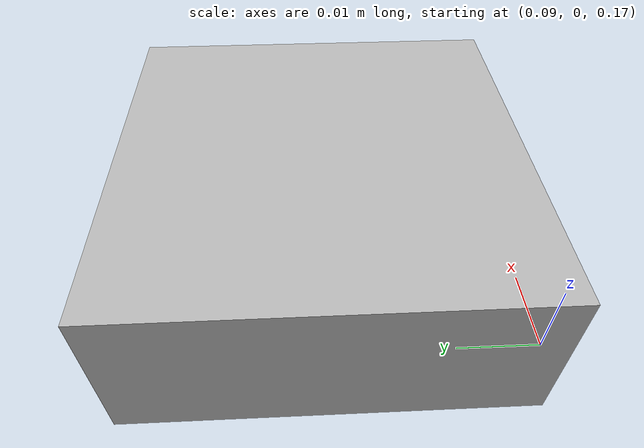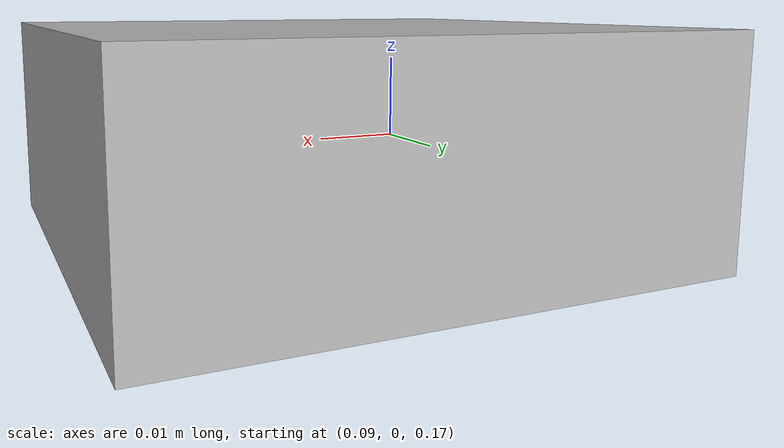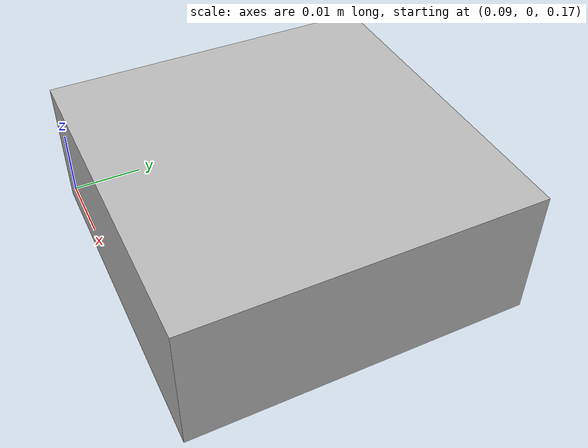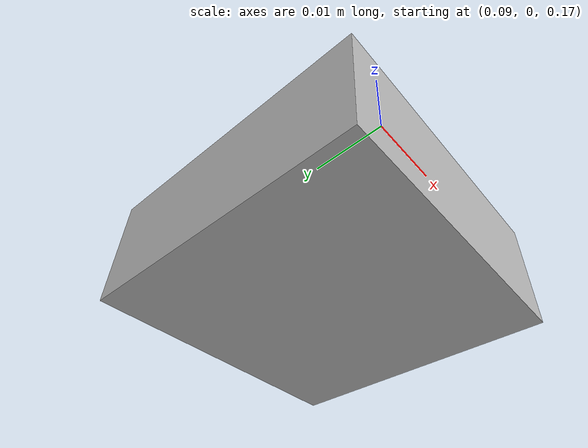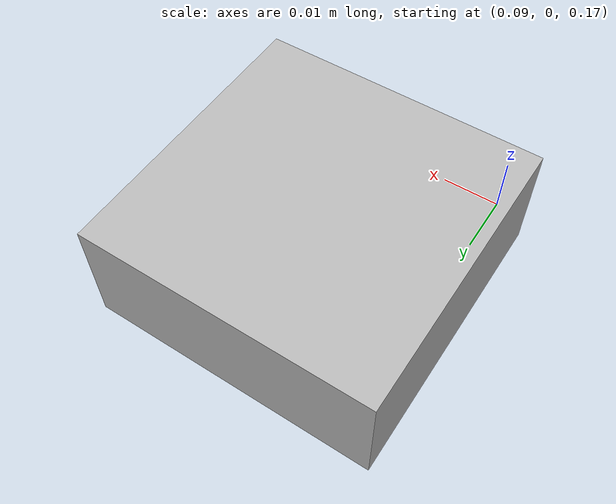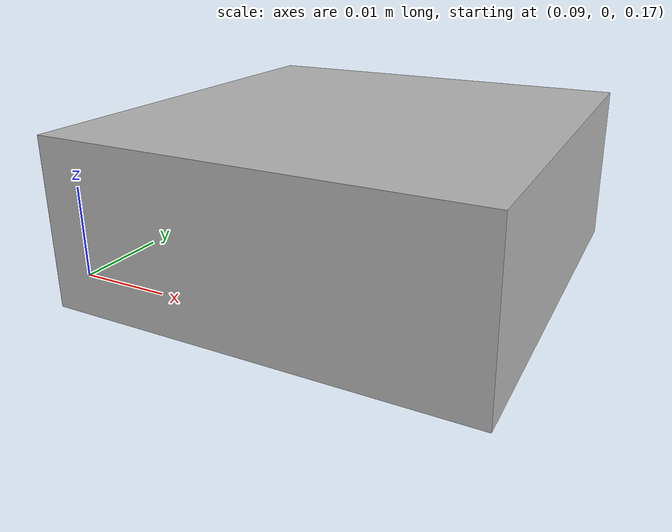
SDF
<?xml version="1.0" ?>
<sdf version="1.10">

  <model name="vertical_camera">
    <pose>0.10 0 0.15 0 0 0</pose>
    <link name="vertical_camera_link">
      <pose>0.01 0.025 0.025 0 1.570796327 0</pose>
      <inertial>
        <mass>0.01</mass>
        <inertia>
          <ixx>4.15e-6</ixx>
          <ixy>0</ixy>
          <ixz>0</ixz>
          <iyy>2.407e-6</iyy>
          <iyz>0</iyz>
          <izz>2.407e-6</izz>
        </inertia>
      </inertial>
      <visual name="visual">
        <geometry>
          <box>
            <size>0.02 0.05 0.05</size>
          </box>
        </geometry>
      </visual>
      <sensor name="camera" type="camera">
        <camera>
          <horizontal_fov>1.047</horizontal_fov>
          <image>
            <width>800</width>
            <height>800</height>
          </image>
          <clip>
            <near>0.1</near>
            <far>100</far>
          </clip>
          <noise>
            <type>gaussian</type>
            <mean>0.0</mean>
            <stddev>0.001</stddev>
          </noise>
        </camera>
        <always_on>1</always_on>
        <update_rate>30</update_rate>
        <visualize>true</visualize>
        <topic>vertical_camera</topic>
      </sensor>
    </link>
  </model>

</sdf>
